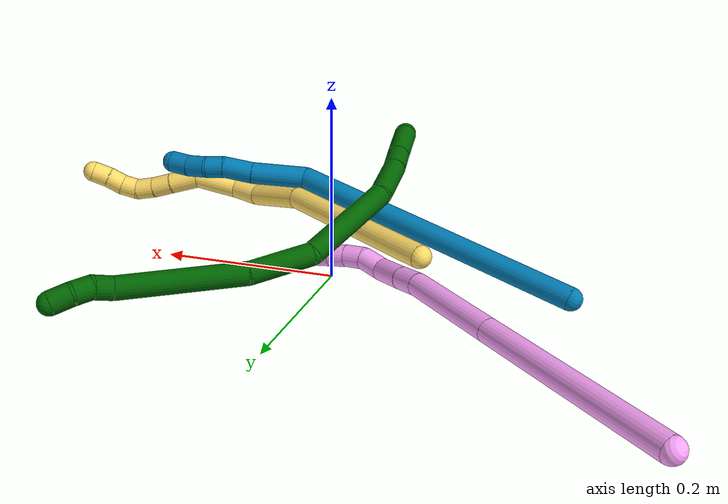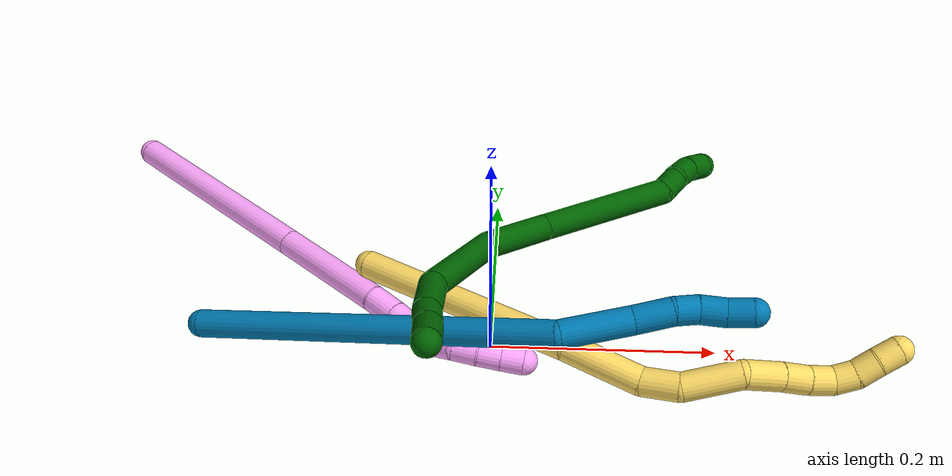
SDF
<sdf version="1.7">
 <world name="default">
  <model name="4">
   <static>0</static>
   <link name="4">
    <collision name="collision-cylinder-e_1_1_4">
     <pose>0.042945 -0.05913 -0.083503 2.52544 0.39739 1.12833</pose>
     <geometry><cylinder><radius>0.0125</radius><length>0.221932</length></cylinder></geometry>
     <surface>
      <friction><ode><mu>1.16</mu><mu2>1.16</mu2><slip1>0</slip1><slip2>0</slip2></ode></friction>
      <contact><ode><kp>1e+06</kp><kd>1</kd><max_vel>0</max_vel><min_depth>0.001</min_depth></ode></contact>
     </surface>
    </collision>
    <visual name="visual-cylinder-e_1_1_4">
     <pose>0.042945 -0.05913 -0.083503 2.52544 0.39739 1.12833</pose>
     <geometry><cylinder><radius>0.0125</radius><length>0.221932</length></cylinder></geometry>
     <material><ambient>1 0.65098 0.996078 1</ambient></material>
    </visual>
    <collision name="collision-cylinder-e_2_4_5">
     <pose>0.108557 -0.149914 -0.211364 2.52178 0.394173 1.11512</pose>
     <geometry><cylinder><radius>0.0125</radius><length>0.118039</length></cylinder></geometry>
     <surface>
      <friction><ode><mu>1.16</mu><mu2>1.16</mu2><slip1>0</slip1><slip2>0</slip2></ode></friction>
      <contact><ode><kp>1e+06</kp><kd>1</kd><max_vel>0</max_vel><min_depth>0.001</min_depth></ode></contact>
     </surface>
    </collision>
    <visual name="visual-cylinder-e_2_4_5">
     <pose>0.108557 -0.149914 -0.211364 2.52178 0.394173 1.11512</pose>
     <geometry><cylinder><radius>0.0125</radius><length>0.118039</length></cylinder></geometry>
     <material><ambient>1 0.65098 0.996078 1</ambient></material>
    </visual>
    <collision name="collision-cylinder-e_3_5_6">
     <pose>0.135828 -0.187824 -0.267403 2.64998 0.33449 1.18463</pose>
     <geometry><cylinder><radius>0.0125</radius><length>0.028057</length></cylinder></geometry>
     <surface>
      <friction><ode><mu>1.16</mu><mu2>1.16</mu2><slip1>0</slip1><slip2>0</slip2></ode></friction>
      <contact><ode><kp>1e+06</kp><kd>1</kd><max_vel>0</max_vel><min_depth>0.001</min_depth></ode></contact>
     </surface>
    </collision>
    <visual name="visual-cylinder-e_3_5_6">
     <pose>0.135828 -0.187824 -0.267403 2.64998 0.33449 1.18463</pose>
     <geometry><cylinder><radius>0.0125</radius><length>0.028057</length></cylinder></geometry>
     <material><ambient>1 0.65098 0.996078 1</ambient></material>
    </visual>
    <collision name="collision-cylinder-e_4_6_7">
     <pose>0.146152 -0.204191 -0.296279 2.60995 0.279164 0.952782</pose>
     <geometry><cylinder><radius>0.0125</radius><length>0.041501</length></cylinder></geometry>
     <surface>
      <friction><ode><mu>1.16</mu><mu2>1.16</mu2><slip1>0</slip1><slip2>0</slip2></ode></friction>
      <contact><ode><kp>1e+06</kp><kd>1</kd><max_vel>0</max_vel><min_depth>0.001</min_depth></ode></contact>
     </surface>
    </collision>
    <visual name="visual-cylinder-e_4_6_7">
     <pose>0.146152 -0.204191 -0.296279 2.60995 0.279164 0.952782</pose>
     <geometry><cylinder><radius>0.0125</radius><length>0.041501</length></cylinder></geometry>
     <material><ambient>1 0.65098 0.996078 1</ambient></material>
    </visual>
    <collision name="collision-cylinder-e_5_7_8">
     <pose>0.160955 -0.219566 -0.322465 2.61209 0.717134 1.88905</pose>
     <geometry><cylinder><radius>0.0125</radius><length>0.027647</length></cylinder></geometry>
     <surface>
      <friction><ode><mu>1.16</mu><mu2>1.16</mu2><slip1>0</slip1><slip2>0</slip2></ode></friction>
      <contact><ode><kp>1e+06</kp><kd>1</kd><max_vel>0</max_vel><min_depth>0.001</min_depth></ode></contact>
     </surface>
    </collision>
    <visual name="visual-cylinder-e_5_7_8">
     <pose>0.160955 -0.219566 -0.322465 2.61209 0.717134 1.88905</pose>
     <geometry><cylinder><radius>0.0125</radius><length>0.027647</length></cylinder></geometry>
     <material><ambient>1 0.65098 0.996078 1</ambient></material>
    </visual>
    <collision name="collision-cylinder-e_6_8_9">
     <pose>0.176619 -0.225567 -0.340408 3.05926 0.632219 2.89104</pose>
     <geometry><cylinder><radius>0.0125</radius><length>0.022267</length></cylinder></geometry>
     <surface>
      <friction><ode><mu>1.16</mu><mu2>1.16</mu2><slip1>0</slip1><slip2>0</slip2></ode></friction>
      <contact><ode><kp>1e+06</kp><kd>1</kd><max_vel>0</max_vel><min_depth>0.001</min_depth></ode></contact>
     </surface>
    </collision>
    <visual name="visual-cylinder-e_6_8_9">
     <pose>0.176619 -0.225567 -0.340408 3.05926 0.632219 2.89104</pose>
     <geometry><cylinder><radius>0.0125</radius><length>0.022267</length></cylinder></geometry>
     <material><ambient>1 0.65098 0.996078 1</ambient></material>
    </visual>
    <collision name="collision-cylinder-e_7_9_10">
     <pose>0.18907 -0.225664 -0.357742 -3.06515 0.609625 -2.8997</pose>
     <geometry><cylinder><radius>0.0125</radius><length>0.020509</length></cylinder></geometry>
     <surface>
      <friction><ode><mu>1.16</mu><mu2>1.16</mu2><slip1>0</slip1><slip2>0</slip2></ode></friction>
      <contact><ode><kp>1e+06</kp><kd>1</kd><max_vel>0</max_vel><min_depth>0.001</min_depth></ode></contact>
     </surface>
    </collision>
    <visual name="visual-cylinder-e_7_9_10">
     <pose>0.18907 -0.225664 -0.357742 -3.06515 0.609625 -2.8997</pose>
     <geometry><cylinder><radius>0.0125</radius><length>0.020509</length></cylinder></geometry>
     <material><ambient>1 0.65098 0.996078 1</ambient></material>
    </visual>
    <collision name="collision-cylinder-e_8_10_2">
     <pose>0.200862 -0.224429 -0.374191 -3.06823 0.631921 -2.91803</pose>
     <geometry><cylinder><radius>0.0125</radius><length>0.020047</length></cylinder></geometry>
     <surface>
      <friction><ode><mu>1.16</mu><mu2>1.16</mu2><slip1>0</slip1><slip2>0</slip2></ode></friction>
      <contact><ode><kp>1e+06</kp><kd>1</kd><max_vel>0</max_vel><min_depth>0.001</min_depth></ode></contact>
     </surface>
    </collision>
    <visual name="visual-cylinder-e_8_10_2">
     <pose>0.200862 -0.224429 -0.374191 -3.06823 0.631921 -2.91803</pose>
     <geometry><cylinder><radius>0.0125</radius><length>0.020047</length></cylinder></geometry>
     <material><ambient>1 0.65098 0.996078 1</ambient></material>
    </visual>
    <collision name="collision-sphere-2">
     <pose>0.206783 -0.223836 -0.382257 0 -0 0</pose>
     <geometry><sphere><radius>0.0125</radius></sphere></geometry>
     <surface>
      <friction><ode><mu>1.16</mu><mu2>1.16</mu2><slip1>0</slip1><slip2>0</slip2></ode></friction>
      <contact><ode><kp>1e+06</kp><kd>1</kd><max_vel>0</max_vel><min_depth>0.001</min_depth></ode></contact>
     </surface>
    </collision>
    <visual name="visual-sphere-2">
     <pose>0.206783 -0.223836 -0.382257 0 -0 0</pose>
     <geometry><sphere><radius>0.0125</radius></sphere></geometry>
     <material><ambient>1 0.65098 0.996078 1</ambient></material>
    </visual>
    <collision name="collision-sphere-10">
     <pose>0.194941 -0.225022 -0.366124 0 -0 0</pose>
     <geometry><sphere><radius>0.0125</radius></sphere></geometry>
     <surface>
      <friction><ode><mu>1.16</mu><mu2>1.16</mu2><slip1>0</slip1><slip2>0</slip2></ode></friction>
      <contact><ode><kp>1e+06</kp><kd>1</kd><max_vel>0</max_vel><min_depth>0.001</min_depth></ode></contact>
     </surface>
    </collision>
    <visual name="visual-sphere-10">
     <pose>0.194941 -0.225022 -0.366124 0 -0 0</pose>
     <geometry><sphere><radius>0.0125</radius></sphere></geometry>
     <material><ambient>1 0.65098 0.996078 1</ambient></material>
    </visual>
    <collision name="collision-sphere-9">
     <pose>0.183198 -0.226306 -0.349359 0 -0 0</pose>
     <geometry><sphere><radius>0.0125</radius></sphere></geometry>
     <surface>
      <friction><ode><mu>1.16</mu><mu2>1.16</mu2><slip1>0</slip1><slip2>0</slip2></ode></friction>
      <contact><ode><kp>1e+06</kp><kd>1</kd><max_vel>0</max_vel><min_depth>0.001</min_depth></ode></contact>
     </surface>
    </collision>
    <visual name="visual-sphere-9">
     <pose>0.183198 -0.226306 -0.349359 0 -0 0</pose>
     <geometry><sphere><radius>0.0125</radius></sphere></geometry>
     <material><ambient>1 0.65098 0.996078 1</ambient></material>
    </visual>
    <collision name="collision-sphere-4">
     <pose>0.085891 -0.11826 -0.167007 0 -0 0</pose>
     <geometry><sphere><radius>0.0125</radius></sphere></geometry>
     <surface>
      <friction><ode><mu>1.16</mu><mu2>1.16</mu2><slip1>0</slip1><slip2>0</slip2></ode></friction>
      <contact><ode><kp>1e+06</kp><kd>1</kd><max_vel>0</max_vel><min_depth>0.001</min_depth></ode></contact>
     </surface>
    </collision>
    <visual name="visual-sphere-4">
     <pose>0.085891 -0.11826 -0.167007 0 -0 0</pose>
     <geometry><sphere><radius>0.0125</radius></sphere></geometry>
     <material><ambient>1 0.65098 0.996078 1</ambient></material>
    </visual>
    <collision name="collision-sphere-1">
     <geometry><sphere><radius>0.0125</radius></sphere></geometry>
     <surface>
      <friction><ode><mu>1.16</mu><mu2>1.16</mu2><slip1>0</slip1><slip2>0</slip2></ode></friction>
      <contact><ode><kp>1e+06</kp><kd>1</kd><max_vel>0</max_vel><min_depth>0.001</min_depth></ode></contact>
     </surface>
    </collision>
    <visual name="visual-sphere-1">
     <geometry><sphere><radius>0.0125</radius></sphere></geometry>
     <material><ambient>1 0.65098 0.996078 1</ambient></material>
    </visual>
    <collision name="collision-sphere-8">
     <pose>0.17004 -0.224828 -0.331457 0 -0 0</pose>
     <geometry><sphere><radius>0.0125</radius></sphere></geometry>
     <surface>
      <friction><ode><mu>1.16</mu><mu2>1.16</mu2><slip1>0</slip1><slip2>0</slip2></ode></friction>
      <contact><ode><kp>1e+06</kp><kd>1</kd><max_vel>0</max_vel><min_depth>0.001</min_depth></ode></contact>
     </surface>
    </collision>
    <visual name="visual-sphere-8">
     <pose>0.17004 -0.224828 -0.331457 0 -0 0</pose>
     <geometry><sphere><radius>0.0125</radius></sphere></geometry>
     <material><ambient>1 0.65098 0.996078 1</ambient></material>
    </visual>
    <collision name="collision-sphere-5">
     <pose>0.131223 -0.181569 -0.255721 0 -0 0</pose>
     <geometry><sphere><radius>0.0125</radius></sphere></geometry>
     <surface>
      <friction><ode><mu>1.16</mu><mu2>1.16</mu2><slip1>0</slip1><slip2>0</slip2></ode></friction>
      <contact><ode><kp>1e+06</kp><kd>1</kd><max_vel>0</max_vel><min_depth>0.001</min_depth></ode></contact>
     </surface>
    </collision>
    <visual name="visual-sphere-5">
     <pose>0.131223 -0.181569 -0.255721 0 -0 0</pose>
     <geometry><sphere><radius>0.0125</radius></sphere></geometry>
     <material><ambient>1 0.65098 0.996078 1</ambient></material>
    </visual>
    <collision name="collision-sphere-6">
     <pose>0.140434 -0.194079 -0.279085 0 -0 0</pose>
     <geometry><sphere><radius>0.0125</radius></sphere></geometry>
     <surface>
      <friction><ode><mu>1.16</mu><mu2>1.16</mu2><slip1>0</slip1><slip2>0</slip2></ode></friction>
      <contact><ode><kp>1e+06</kp><kd>1</kd><max_vel>0</max_vel><min_depth>0.001</min_depth></ode></contact>
     </surface>
    </collision>
    <visual name="visual-sphere-6">
     <pose>0.140434 -0.194079 -0.279085 0 -0 0</pose>
     <geometry><sphere><radius>0.0125</radius></sphere></geometry>
     <material><ambient>1 0.65098 0.996078 1</ambient></material>
    </visual>
    <collision name="collision-sphere-7">
     <pose>0.15187 -0.214303 -0.313473 0 -0 0</pose>
     <geometry><sphere><radius>0.0125</radius></sphere></geometry>
     <surface>
      <friction><ode><mu>1.16</mu><mu2>1.16</mu2><slip1>0</slip1><slip2>0</slip2></ode></friction>
      <contact><ode><kp>1e+06</kp><kd>1</kd><max_vel>0</max_vel><min_depth>0.001</min_depth></ode></contact>
     </surface>
    </collision>
    <visual name="visual-sphere-7">
     <pose>0.15187 -0.214303 -0.313473 0 -0 0</pose>
     <geometry><sphere><radius>0.0125</radius></sphere></geometry>
     <material><ambient>1 0.65098 0.996078 1</ambient></material>
    </visual>
    <inertial>
     <pose>0.097017 -0.129566 -0.189227 0 -0 0</pose>
     <mass>0.5</mass>
     <inertia>
      <ixx>0.001332</ixx>
      <ixy>0</ixy>
      <ixz>0</ixz>
      <iyy>0.000722</iyy>
      <iyz>0</iyz>
      <izz>0.000124</izz>
     </inertia>
    </inertial>
   </link>
   <pose>-0.361755 0.263542 0.012529 -0.594841 -0.742172 0.316001</pose>
  </model>
  <model name="5">
   <static>0</static>
   <link name="5">
    <collision name="collision-cylinder-e_1_1_4">
     <pose>0.033541 -0.003628 0.097668 0.037128 0.330585 0.006194</pose>
     <geometry><cylinder><radius>0.0125</radius><length>0.20666</length></cylinder></geometry>
     <surface>
      <friction><ode><mu>1.16</mu><mu2>1.16</mu2><slip1>0</slip1><slip2>0</slip2></ode></friction>
      <contact><ode><kp>1e+06</kp><kd>1</kd><max_vel>0</max_vel><min_depth>0.001</min_depth></ode></contact>
     </surface>
    </collision>
    <visual name="visual-cylinder-e_1_1_4">
     <pose>0.033541 -0.003628 0.097668 0.037128 0.330585 0.006194</pose>
     <geometry><cylinder><radius>0.0125</radius><length>0.20666</length></cylinder></geometry>
     <material><ambient>1 0.858824 0.4 1</ambient></material>
    </visual>
    <collision name="collision-cylinder-e_2_4_5">
     <pose>0.086041 -0.007742 0.224057 0.016918 0.583382 0.00508</pose>
     <geometry><cylinder><radius>0.0125</radius><length>0.068838</length></cylinder></geometry>
     <surface>
      <friction><ode><mu>1.16</mu><mu2>1.16</mu2><slip1>0</slip1><slip2>0</slip2></ode></friction>
      <contact><ode><kp>1e+06</kp><kd>1</kd><max_vel>0</max_vel><min_depth>0.001</min_depth></ode></contact>
     </surface>
    </collision>
    <visual name="visual-cylinder-e_2_4_5">
     <pose>0.086041 -0.007742 0.224057 0.016918 0.583382 0.00508</pose>
     <geometry><cylinder><radius>0.0125</radius><length>0.068838</length></cylinder></geometry>
     <material><ambient>1 0.858824 0.4 1</ambient></material>
    </visual>
    <collision name="collision-cylinder-e_3_5_6">
     <pose>0.111753 -0.004333 0.267117 -0.265209 0.426597 -0.057765</pose>
     <geometry><cylinder><radius>0.0125</radius><length>0.03264</length></cylinder></geometry>
     <surface>
      <friction><ode><mu>1.16</mu><mu2>1.16</mu2><slip1>0</slip1><slip2>0</slip2></ode></friction>
      <contact><ode><kp>1e+06</kp><kd>1</kd><max_vel>0</max_vel><min_depth>0.001</min_depth></ode></contact>
     </surface>
    </collision>
    <visual name="visual-cylinder-e_3_5_6">
     <pose>0.111753 -0.004333 0.267117 -0.265209 0.426597 -0.057765</pose>
     <geometry><cylinder><radius>0.0125</radius><length>0.03264</length></cylinder></geometry>
     <material><ambient>1 0.858824 0.4 1</ambient></material>
    </visual>
    <collision name="collision-cylinder-e_4_6_7">
     <pose>0.129126 0.014701 0.299056 -0.710346 0.429009 -0.161256</pose>
     <geometry><cylinder><radius>0.0125</radius><length>0.051061</length></cylinder></geometry>
     <surface>
      <friction><ode><mu>1.16</mu><mu2>1.16</mu2><slip1>0</slip1><slip2>0</slip2></ode></friction>
      <contact><ode><kp>1e+06</kp><kd>1</kd><max_vel>0</max_vel><min_depth>0.001</min_depth></ode></contact>
     </surface>
    </collision>
    <visual name="visual-cylinder-e_4_6_7">
     <pose>0.129126 0.014701 0.299056 -0.710346 0.429009 -0.161256</pose>
     <geometry><cylinder><radius>0.0125</radius><length>0.051061</length></cylinder></geometry>
     <material><ambient>1 0.858824 0.4 1</ambient></material>
    </visual>
    <collision name="collision-cylinder-e_5_7_8">
     <pose>0.153285 0.037152 0.32436 -0.75937 0.905667 -0.383545</pose>
     <geometry><cylinder><radius>0.0125</radius><length>0.034415</length></cylinder></geometry>
     <surface>
      <friction><ode><mu>1.16</mu><mu2>1.16</mu2><slip1>0</slip1><slip2>0</slip2></ode></friction>
      <contact><ode><kp>1e+06</kp><kd>1</kd><max_vel>0</max_vel><min_depth>0.001</min_depth></ode></contact>
     </surface>
    </collision>
    <visual name="visual-cylinder-e_5_7_8">
     <pose>0.153285 0.037152 0.32436 -0.75937 0.905667 -0.383545</pose>
     <geometry><cylinder><radius>0.0125</radius><length>0.034415</length></cylinder></geometry>
     <material><ambient>1 0.858824 0.4 1</ambient></material>
    </visual>
    <collision name="collision-cylinder-e_6_8_9">
     <pose>0.176363 0.048803 0.338027 -0.629035 0.912529 -0.31666</pose>
     <geometry><cylinder><radius>0.0125</radius><length>0.024114</length></cylinder></geometry>
     <surface>
      <friction><ode><mu>1.16</mu><mu2>1.16</mu2><slip1>0</slip1><slip2>0</slip2></ode></friction>
      <contact><ode><kp>1e+06</kp><kd>1</kd><max_vel>0</max_vel><min_depth>0.001</min_depth></ode></contact>
     </surface>
    </collision>
    <visual name="visual-cylinder-e_6_8_9">
     <pose>0.176363 0.048803 0.338027 -0.629035 0.912529 -0.31666</pose>
     <geometry><cylinder><radius>0.0125</radius><length>0.024114</length></cylinder></geometry>
     <material><ambient>1 0.858824 0.4 1</ambient></material>
    </visual>
    <collision name="collision-cylinder-e_7_9_10">
     <pose>0.193925 0.058132 0.34987 -0.703772 0.805277 -0.310245</pose>
     <geometry><cylinder><radius>0.0125</radius><length>0.022258</length></cylinder></geometry>
     <surface>
      <friction><ode><mu>1.16</mu><mu2>1.16</mu2><slip1>0</slip1><slip2>0</slip2></ode></friction>
      <contact><ode><kp>1e+06</kp><kd>1</kd><max_vel>0</max_vel><min_depth>0.001</min_depth></ode></contact>
     </surface>
    </collision>
    <visual name="visual-cylinder-e_7_9_10">
     <pose>0.193925 0.058132 0.34987 -0.703772 0.805277 -0.310245</pose>
     <geometry><cylinder><radius>0.0125</radius><length>0.022258</length></cylinder></geometry>
     <material><ambient>1 0.858824 0.4 1</ambient></material>
    </visual>
    <collision name="collision-cylinder-e_8_10_11">
     <pose>0.205831 0.069408 0.36249 -0.750494 0.398665 -0.158818</pose>
     <geometry><cylinder><radius>0.0125</radius><length>0.020003</length></cylinder></geometry>
     <surface>
      <friction><ode><mu>1.16</mu><mu2>1.16</mu2><slip1>0</slip1><slip2>0</slip2></ode></friction>
      <contact><ode><kp>1e+06</kp><kd>1</kd><max_vel>0</max_vel><min_depth>0.001</min_depth></ode></contact>
     </surface>
    </collision>
    <visual name="visual-cylinder-e_8_10_11">
     <pose>0.205831 0.069408 0.36249 -0.750494 0.398665 -0.158818</pose>
     <geometry><cylinder><radius>0.0125</radius><length>0.020003</length></cylinder></geometry>
     <material><ambient>1 0.858824 0.4 1</ambient></material>
    </visual>
    <collision name="collision-cylinder-e_9_11_12">
     <pose>0.21109 0.083555 0.375263 -0.916265 0.138022 -0.068144</pose>
     <geometry><cylinder><radius>0.0125</radius><length>0.020006</length></cylinder></geometry>
     <surface>
      <friction><ode><mu>1.16</mu><mu2>1.16</mu2><slip1>0</slip1><slip2>0</slip2></ode></friction>
      <contact><ode><kp>1e+06</kp><kd>1</kd><max_vel>0</max_vel><min_depth>0.001</min_depth></ode></contact>
     </surface>
    </collision>
    <visual name="visual-cylinder-e_9_11_12">
     <pose>0.21109 0.083555 0.375263 -0.916265 0.138022 -0.068144</pose>
     <geometry><cylinder><radius>0.0125</radius><length>0.020006</length></cylinder></geometry>
     <material><ambient>1 0.858824 0.4 1</ambient></material>
    </visual>
    <collision name="collision-cylinder-e_10_12_2">
     <pose>0.215085 0.099343 0.386803 -0.963498 0.264932 -0.139107</pose>
     <geometry><cylinder><radius>0.0125</radius><length>0.020006</length></cylinder></geometry>
     <surface>
      <friction><ode><mu>1.16</mu><mu2>1.16</mu2><slip1>0</slip1><slip2>0</slip2></ode></friction>
      <contact><ode><kp>1e+06</kp><kd>1</kd><max_vel>0</max_vel><min_depth>0.001</min_depth></ode></contact>
     </surface>
    </collision>
    <visual name="visual-cylinder-e_10_12_2">
     <pose>0.215085 0.099343 0.386803 -0.963498 0.264932 -0.139107</pose>
     <geometry><cylinder><radius>0.0125</radius><length>0.020006</length></cylinder></geometry>
     <material><ambient>1 0.858824 0.4 1</ambient></material>
    </visual>
    <collision name="collision-sphere-2">
     <pose>0.217704 0.10727 0.392312 0 -0 0</pose>
     <geometry><sphere><radius>0.0125</radius></sphere></geometry>
     <surface>
      <friction><ode><mu>1.16</mu><mu2>1.16</mu2><slip1>0</slip1><slip2>0</slip2></ode></friction>
      <contact><ode><kp>1e+06</kp><kd>1</kd><max_vel>0</max_vel><min_depth>0.001</min_depth></ode></contact>
     </surface>
    </collision>
    <visual name="visual-sphere-2">
     <pose>0.217704 0.10727 0.392312 0 -0 0</pose>
     <geometry><sphere><radius>0.0125</radius></sphere></geometry>
     <material><ambient>1 0.858824 0.4 1</ambient></material>
    </visual>
    <collision name="collision-sphere-12">
     <pose>0.212466 0.091415 0.381295 0 -0 0</pose>
     <geometry><sphere><radius>0.0125</radius></sphere></geometry>
     <surface>
      <friction><ode><mu>1.16</mu><mu2>1.16</mu2><slip1>0</slip1><slip2>0</slip2></ode></friction>
      <contact><ode><kp>1e+06</kp><kd>1</kd><max_vel>0</max_vel><min_depth>0.001</min_depth></ode></contact>
     </surface>
    </collision>
    <visual name="visual-sphere-12">
     <pose>0.212466 0.091415 0.381295 0 -0 0</pose>
     <geometry><sphere><radius>0.0125</radius></sphere></geometry>
     <material><ambient>1 0.858824 0.4 1</ambient></material>
    </visual>
    <collision name="collision-sphere-11">
     <pose>0.209714 0.075694 0.369231 0 -0 0</pose>
     <geometry><sphere><radius>0.0125</radius></sphere></geometry>
     <surface>
      <friction><ode><mu>1.16</mu><mu2>1.16</mu2><slip1>0</slip1><slip2>0</slip2></ode></friction>
      <contact><ode><kp>1e+06</kp><kd>1</kd><max_vel>0</max_vel><min_depth>0.001</min_depth></ode></contact>
     </surface>
    </collision>
    <visual name="visual-sphere-11">
     <pose>0.209714 0.075694 0.369231 0 -0 0</pose>
     <geometry><sphere><radius>0.0125</radius></sphere></geometry>
     <material><ambient>1 0.858824 0.4 1</ambient></material>
    </visual>
    <collision name="collision-sphere-10">
     <pose>0.201949 0.063122 0.355749 0 -0 0</pose>
     <geometry><sphere><radius>0.0125</radius></sphere></geometry>
     <surface>
      <friction><ode><mu>1.16</mu><mu2>1.16</mu2><slip1>0</slip1><slip2>0</slip2></ode></friction>
      <contact><ode><kp>1e+06</kp><kd>1</kd><max_vel>0</max_vel><min_depth>0.001</min_depth></ode></contact>
     </surface>
    </collision>
    <visual name="visual-sphere-10">
     <pose>0.201949 0.063122 0.355749 0 -0 0</pose>
     <geometry><sphere><radius>0.0125</radius></sphere></geometry>
     <material><ambient>1 0.858824 0.4 1</ambient></material>
    </visual>
    <collision name="collision-sphere-9">
     <pose>0.1859 0.053142 0.343991 0 -0 0</pose>
     <geometry><sphere><radius>0.0125</radius></sphere></geometry>
     <surface>
      <friction><ode><mu>1.16</mu><mu2>1.16</mu2><slip1>0</slip1><slip2>0</slip2></ode></friction>
      <contact><ode><kp>1e+06</kp><kd>1</kd><max_vel>0</max_vel><min_depth>0.001</min_depth></ode></contact>
     </surface>
    </collision>
    <visual name="visual-sphere-9">
     <pose>0.1859 0.053142 0.343991 0 -0 0</pose>
     <geometry><sphere><radius>0.0125</radius></sphere></geometry>
     <material><ambient>1 0.858824 0.4 1</ambient></material>
    </visual>
    <collision name="collision-sphere-4">
     <pose>0.067081 -0.007256 0.195335 0 -0 0</pose>
     <geometry><sphere><radius>0.0125</radius></sphere></geometry>
     <surface>
      <friction><ode><mu>1.16</mu><mu2>1.16</mu2><slip1>0</slip1><slip2>0</slip2></ode></friction>
      <contact><ode><kp>1e+06</kp><kd>1</kd><max_vel>0</max_vel><min_depth>0.001</min_depth></ode></contact>
     </surface>
    </collision>
    <visual name="visual-sphere-4">
     <pose>0.067081 -0.007256 0.195335 0 -0 0</pose>
     <geometry><sphere><radius>0.0125</radius></sphere></geometry>
     <material><ambient>1 0.858824 0.4 1</ambient></material>
    </visual>
    <collision name="collision-sphere-1">
     <geometry><sphere><radius>0.0125</radius></sphere></geometry>
     <surface>
      <friction><ode><mu>1.16</mu><mu2>1.16</mu2><slip1>0</slip1><slip2>0</slip2></ode></friction>
      <contact><ode><kp>1e+06</kp><kd>1</kd><max_vel>0</max_vel><min_depth>0.001</min_depth></ode></contact>
     </surface>
    </collision>
    <visual name="visual-sphere-1">
     <geometry><sphere><radius>0.0125</radius></sphere></geometry>
     <material><ambient>1 0.858824 0.4 1</ambient></material>
    </visual>
    <collision name="collision-sphere-8">
     <pose>0.166825 0.044463 0.332063 0 -0 0</pose>
     <geometry><sphere><radius>0.0125</radius></sphere></geometry>
     <surface>
      <friction><ode><mu>1.16</mu><mu2>1.16</mu2><slip1>0</slip1><slip2>0</slip2></ode></friction>
      <contact><ode><kp>1e+06</kp><kd>1</kd><max_vel>0</max_vel><min_depth>0.001</min_depth></ode></contact>
     </surface>
    </collision>
    <visual name="visual-sphere-8">
     <pose>0.166825 0.044463 0.332063 0 -0 0</pose>
     <geometry><sphere><radius>0.0125</radius></sphere></geometry>
     <material><ambient>1 0.858824 0.4 1</ambient></material>
    </visual>
    <collision name="collision-sphere-5">
     <pose>0.105 -0.008228 0.252779 0 -0 0</pose>
     <geometry><sphere><radius>0.0125</radius></sphere></geometry>
     <surface>
      <friction><ode><mu>1.16</mu><mu2>1.16</mu2><slip1>0</slip1><slip2>0</slip2></ode></friction>
      <contact><ode><kp>1e+06</kp><kd>1</kd><max_vel>0</max_vel><min_depth>0.001</min_depth></ode></contact>
     </surface>
    </collision>
    <visual name="visual-sphere-5">
     <pose>0.105 -0.008228 0.252779 0 -0 0</pose>
     <geometry><sphere><radius>0.0125</radius></sphere></geometry>
     <material><ambient>1 0.858824 0.4 1</ambient></material>
    </visual>
    <collision name="collision-sphere-6">
     <pose>0.118506 -0.000439 0.281455 0 -0 0</pose>
     <geometry><sphere><radius>0.0125</radius></sphere></geometry>
     <surface>
      <friction><ode><mu>1.16</mu><mu2>1.16</mu2><slip1>0</slip1><slip2>0</slip2></ode></friction>
      <contact><ode><kp>1e+06</kp><kd>1</kd><max_vel>0</max_vel><min_depth>0.001</min_depth></ode></contact>
     </surface>
    </collision>
    <visual name="visual-sphere-6">
     <pose>0.118506 -0.000439 0.281455 0 -0 0</pose>
     <geometry><sphere><radius>0.0125</radius></sphere></geometry>
     <material><ambient>1 0.858824 0.4 1</ambient></material>
    </visual>
    <collision name="collision-sphere-7">
     <pose>0.139746 0.02984 0.316658 0 -0 0</pose>
     <geometry><sphere><radius>0.0125</radius></sphere></geometry>
     <surface>
      <friction><ode><mu>1.16</mu><mu2>1.16</mu2><slip1>0</slip1><slip2>0</slip2></ode></friction>
      <contact><ode><kp>1e+06</kp><kd>1</kd><max_vel>0</max_vel><min_depth>0.001</min_depth></ode></contact>
     </surface>
    </collision>
    <visual name="visual-sphere-7">
     <pose>0.139746 0.02984 0.316658 0 -0 0</pose>
     <geometry><sphere><radius>0.0125</radius></sphere></geometry>
     <material><ambient>1 0.858824 0.4 1</ambient></material>
    </visual>
    <inertial>
     <pose>0.099166 0.016246 0.218389 0 -0 0</pose>
     <mass>0.5</mass>
     <inertia>
      <ixx>0.00077</ixx>
      <ixy>0</ixy>
      <ixz>0</ixz>
      <iyy>0.000806</iyy>
      <iyz>0</iyz>
      <izz>-0.000231</izz>
     </inertia>
    </inertial>
   </link>
   <pose>-0.110654 0.04493 0.054193 0.968097 0.916741 0.367869</pose>
  </model>
  <model name="6">
   <static>0</static>
   <link name="6">
    <collision name="collision-cylinder-e_1_1_4">
     <pose>0.000845 0.000148 -0.019573 -3.13402 0.04313 -2.79396</pose>
     <geometry><cylinder><radius>0.0125</radius><length>0.039184</length></cylinder></geometry>
     <surface>
      <friction><ode><mu>1.16</mu><mu2>1.16</mu2><slip1>0</slip1><slip2>0</slip2></ode></friction>
      <contact><ode><kp>1e+06</kp><kd>1</kd><max_vel>0</max_vel><min_depth>0.001</min_depth></ode></contact>
     </surface>
    </collision>
    <visual name="visual-cylinder-e_1_1_4">
     <pose>0.000845 0.000148 -0.019573 -3.13402 0.04313 -2.79396</pose>
     <geometry><cylinder><radius>0.0125</radius><length>0.039184</length></cylinder></geometry>
     <material><ambient>0 0.392157 0.003922 1</ambient></material>
    </visual>
    <collision name="collision-cylinder-e_2_4_5">
     <pose>0.001002 0.001066 -0.052715 -3.08497 -0.05053 1.45712</pose>
     <geometry><cylinder><radius>0.0125</radius><length>0.027214</length></cylinder></geometry>
     <surface>
      <friction><ode><mu>1.16</mu><mu2>1.16</mu2><slip1>0</slip1><slip2>0</slip2></ode></friction>
      <contact><ode><kp>1e+06</kp><kd>1</kd><max_vel>0</max_vel><min_depth>0.001</min_depth></ode></contact>
     </surface>
    </collision>
    <visual name="visual-cylinder-e_2_4_5">
     <pose>0.001002 0.001066 -0.052715 -3.08497 -0.05053 1.45712</pose>
     <geometry><cylinder><radius>0.0125</radius><length>0.027214</length></cylinder></geometry>
     <material><ambient>0 0.392157 0.003922 1</ambient></material>
    </visual>
    <collision name="collision-cylinder-e_3_5_6">
     <pose>0.001492 0.005209 -0.092605 -3.01408 0.044318 -0.668261</pose>
     <geometry><cylinder><radius>0.0125</radius><length>0.053128</length></cylinder></geometry>
     <surface>
      <friction><ode><mu>1.16</mu><mu2>1.16</mu2><slip1>0</slip1><slip2>0</slip2></ode></friction>
      <contact><ode><kp>1e+06</kp><kd>1</kd><max_vel>0</max_vel><min_depth>0.001</min_depth></ode></contact>
     </surface>
    </collision>
    <visual name="visual-cylinder-e_3_5_6">
     <pose>0.001492 0.005209 -0.092605 -3.01408 0.044318 -0.668261</pose>
     <geometry><cylinder><radius>0.0125</radius><length>0.053128</length></cylinder></geometry>
     <material><ambient>0 0.392157 0.003922 1</ambient></material>
    </visual>
    <collision name="collision-cylinder-e_4_6_7">
     <pose>0.023573 0.023811 -0.170103 -2.85239 0.373184 -1.82757</pose>
     <geometry><cylinder><radius>0.0125</radius><length>0.114678</length></cylinder></geometry>
     <surface>
      <friction><ode><mu>1.16</mu><mu2>1.16</mu2><slip1>0</slip1><slip2>0</slip2></ode></friction>
      <contact><ode><kp>1e+06</kp><kd>1</kd><max_vel>0</max_vel><min_depth>0.001</min_depth></ode></contact>
     </surface>
    </collision>
    <visual name="visual-cylinder-e_4_6_7">
     <pose>0.023573 0.023811 -0.170103 -2.85239 0.373184 -1.82757</pose>
     <geometry><cylinder><radius>0.0125</radius><length>0.114678</length></cylinder></geometry>
     <material><ambient>0 0.392157 0.003922 1</ambient></material>
    </visual>
    <collision name="collision-cylinder-e_5_7_8">
     <pose>0.066367 0.056133 -0.240838 -2.42336 0.700182 -1.54308</pose>
     <geometry><cylinder><radius>0.0125</radius><length>0.067942</length></cylinder></geometry>
     <surface>
      <friction><ode><mu>1.16</mu><mu2>1.16</mu2><slip1>0</slip1><slip2>0</slip2></ode></friction>
      <contact><ode><kp>1e+06</kp><kd>1</kd><max_vel>0</max_vel><min_depth>0.001</min_depth></ode></contact>
     </surface>
    </collision>
    <visual name="visual-cylinder-e_5_7_8">
     <pose>0.066367 0.056133 -0.240838 -2.42336 0.700182 -1.54308</pose>
     <geometry><cylinder><radius>0.0125</radius><length>0.067942</length></cylinder></geometry>
     <material><ambient>0 0.392157 0.003922 1</ambient></material>
    </visual>
    <collision name="collision-cylinder-e_6_8_9">
     <pose>0.13358 0.114447 -0.28731 -2.14918 0.74415 -1.24915</pose>
     <geometry><cylinder><radius>0.0125</radius><length>0.133827</length></cylinder></geometry>
     <surface>
      <friction><ode><mu>1.16</mu><mu2>1.16</mu2><slip1>0</slip1><slip2>0</slip2></ode></friction>
      <contact><ode><kp>1e+06</kp><kd>1</kd><max_vel>0</max_vel><min_depth>0.001</min_depth></ode></contact>
     </surface>
    </collision>
    <visual name="visual-cylinder-e_6_8_9">
     <pose>0.13358 0.114447 -0.28731 -2.14918 0.74415 -1.24915</pose>
     <geometry><cylinder><radius>0.0125</radius><length>0.133827</length></cylinder></geometry>
     <material><ambient>0 0.392157 0.003922 1</ambient></material>
    </visual>
    <collision name="collision-cylinder-e_7_9_10">
     <pose>0.181947 0.164258 -0.319896 -2.15457 0.287322 -0.525422</pose>
     <geometry><cylinder><radius>0.0125</radius><length>0.021474</length></cylinder></geometry>
     <surface>
      <friction><ode><mu>1.16</mu><mu2>1.16</mu2><slip1>0</slip1><slip2>0</slip2></ode></friction>
      <contact><ode><kp>1e+06</kp><kd>1</kd><max_vel>0</max_vel><min_depth>0.001</min_depth></ode></contact>
     </surface>
    </collision>
    <visual name="visual-cylinder-e_7_9_10">
     <pose>0.181947 0.164258 -0.319896 -2.15457 0.287322 -0.525422</pose>
     <geometry><cylinder><radius>0.0125</radius><length>0.021474</length></cylinder></geometry>
     <material><ambient>0 0.392157 0.003922 1</ambient></material>
    </visual>
    <collision name="collision-cylinder-e_8_10_11">
     <pose>0.189272 0.178303 -0.332943 -2.50468 0.43693 -1.18532</pose>
     <geometry><cylinder><radius>0.0125</radius><length>0.02024</length></cylinder></geometry>
     <surface>
      <friction><ode><mu>1.16</mu><mu2>1.16</mu2><slip1>0</slip1><slip2>0</slip2></ode></friction>
      <contact><ode><kp>1e+06</kp><kd>1</kd><max_vel>0</max_vel><min_depth>0.001</min_depth></ode></contact>
     </surface>
    </collision>
    <visual name="visual-cylinder-e_8_10_11">
     <pose>0.189272 0.178303 -0.332943 -2.50468 0.43693 -1.18532</pose>
     <geometry><cylinder><radius>0.0125</radius><length>0.02024</length></cylinder></geometry>
     <material><ambient>0 0.392157 0.003922 1</ambient></material>
    </visual>
    <collision name="collision-cylinder-e_9_11_2">
     <pose>0.200871 0.188328 -0.347388 -2.56772 0.715242 -1.80482</pose>
     <geometry><cylinder><radius>0.0125</radius><length>0.022313</length></cylinder></geometry>
     <surface>
      <friction><ode><mu>1.16</mu><mu2>1.16</mu2><slip1>0</slip1><slip2>0</slip2></ode></friction>
      <contact><ode><kp>1e+06</kp><kd>1</kd><max_vel>0</max_vel><min_depth>0.001</min_depth></ode></contact>
     </surface>
    </collision>
    <visual name="visual-cylinder-e_9_11_2">
     <pose>0.200871 0.188328 -0.347388 -2.56772 0.715242 -1.80482</pose>
     <geometry><cylinder><radius>0.0125</radius><length>0.022313</length></cylinder></geometry>
     <material><ambient>0 0.392157 0.003922 1</ambient></material>
    </visual>
    <collision name="collision-sphere-2">
     <pose>0.208187 0.192901 -0.354461 0 -0 0</pose>
     <geometry><sphere><radius>0.0125</radius></sphere></geometry>
     <surface>
      <friction><ode><mu>1.16</mu><mu2>1.16</mu2><slip1>0</slip1><slip2>0</slip2></ode></friction>
      <contact><ode><kp>1e+06</kp><kd>1</kd><max_vel>0</max_vel><min_depth>0.001</min_depth></ode></contact>
     </surface>
    </collision>
    <visual name="visual-sphere-2">
     <pose>0.208187 0.192901 -0.354461 0 -0 0</pose>
     <geometry><sphere><radius>0.0125</radius></sphere></geometry>
     <material><ambient>0 0.392157 0.003922 1</ambient></material>
    </visual>
    <collision name="collision-sphere-11">
     <pose>0.193554 0.183756 -0.340314 0 -0 0</pose>
     <geometry><sphere><radius>0.0125</radius></sphere></geometry>
     <surface>
      <friction><ode><mu>1.16</mu><mu2>1.16</mu2><slip1>0</slip1><slip2>0</slip2></ode></friction>
      <contact><ode><kp>1e+06</kp><kd>1</kd><max_vel>0</max_vel><min_depth>0.001</min_depth></ode></contact>
     </surface>
    </collision>
    <visual name="visual-sphere-11">
     <pose>0.193554 0.183756 -0.340314 0 -0 0</pose>
     <geometry><sphere><radius>0.0125</radius></sphere></geometry>
     <material><ambient>0 0.392157 0.003922 1</ambient></material>
    </visual>
    <collision name="collision-sphere-10">
     <pose>0.18499 0.172849 -0.325571 0 -0 0</pose>
     <geometry><sphere><radius>0.0125</radius></sphere></geometry>
     <surface>
      <friction><ode><mu>1.16</mu><mu2>1.16</mu2><slip1>0</slip1><slip2>0</slip2></ode></friction>
      <contact><ode><kp>1e+06</kp><kd>1</kd><max_vel>0</max_vel><min_depth>0.001</min_depth></ode></contact>
     </surface>
    </collision>
    <visual name="visual-sphere-10">
     <pose>0.18499 0.172849 -0.325571 0 -0 0</pose>
     <geometry><sphere><radius>0.0125</radius></sphere></geometry>
     <material><ambient>0 0.392157 0.003922 1</ambient></material>
    </visual>
    <collision name="collision-sphere-9">
     <pose>0.178904 0.155666 -0.31422 0 -0 0</pose>
     <geometry><sphere><radius>0.0125</radius></sphere></geometry>
     <surface>
      <friction><ode><mu>1.16</mu><mu2>1.16</mu2><slip1>0</slip1><slip2>0</slip2></ode></friction>
      <contact><ode><kp>1e+06</kp><kd>1</kd><max_vel>0</max_vel><min_depth>0.001</min_depth></ode></contact>
     </surface>
    </collision>
    <visual name="visual-sphere-9">
     <pose>0.178904 0.155666 -0.31422 0 -0 0</pose>
     <geometry><sphere><radius>0.0125</radius></sphere></geometry>
     <material><ambient>0 0.392157 0.003922 1</ambient></material>
    </visual>
    <collision name="collision-sphere-4">
     <pose>0.00169 0.000297 -0.039147 0 -0 0</pose>
     <geometry><sphere><radius>0.0125</radius></sphere></geometry>
     <surface>
      <friction><ode><mu>1.16</mu><mu2>1.16</mu2><slip1>0</slip1><slip2>0</slip2></ode></friction>
      <contact><ode><kp>1e+06</kp><kd>1</kd><max_vel>0</max_vel><min_depth>0.001</min_depth></ode></contact>
     </surface>
    </collision>
    <visual name="visual-sphere-4">
     <pose>0.00169 0.000297 -0.039147 0 -0 0</pose>
     <geometry><sphere><radius>0.0125</radius></sphere></geometry>
     <material><ambient>0 0.392157 0.003922 1</ambient></material>
    </visual>
    <collision name="collision-sphere-1">
     <geometry><sphere><radius>0.0125</radius></sphere></geometry>
     <surface>
      <friction><ode><mu>1.16</mu><mu2>1.16</mu2><slip1>0</slip1><slip2>0</slip2></ode></friction>
      <contact><ode><kp>1e+06</kp><kd>1</kd><max_vel>0</max_vel><min_depth>0.001</min_depth></ode></contact>
     </surface>
    </collision>
    <visual name="visual-sphere-1">
     <geometry><sphere><radius>0.0125</radius></sphere></geometry>
     <material><ambient>0 0.392157 0.003922 1</ambient></material>
    </visual>
    <collision name="collision-sphere-8">
     <pose>0.088257 0.073228 -0.260399 0 -0 0</pose>
     <geometry><sphere><radius>0.0125</radius></sphere></geometry>
     <surface>
      <friction><ode><mu>1.16</mu><mu2>1.16</mu2><slip1>0</slip1><slip2>0</slip2></ode></friction>
      <contact><ode><kp>1e+06</kp><kd>1</kd><max_vel>0</max_vel><min_depth>0.001</min_depth></ode></contact>
     </surface>
    </collision>
    <visual name="visual-sphere-8">
     <pose>0.088257 0.073228 -0.260399 0 -0 0</pose>
     <geometry><sphere><radius>0.0125</radius></sphere></geometry>
     <material><ambient>0 0.392157 0.003922 1</ambient></material>
    </visual>
    <collision name="collision-sphere-5">
     <pose>0.000315 0.001835 -0.066283 0 -0 0</pose>
     <geometry><sphere><radius>0.0125</radius></sphere></geometry>
     <surface>
      <friction><ode><mu>1.16</mu><mu2>1.16</mu2><slip1>0</slip1><slip2>0</slip2></ode></friction>
      <contact><ode><kp>1e+06</kp><kd>1</kd><max_vel>0</max_vel><min_depth>0.001</min_depth></ode></contact>
     </surface>
    </collision>
    <visual name="visual-sphere-5">
     <pose>0.000315 0.001835 -0.066283 0 -0 0</pose>
     <geometry><sphere><radius>0.0125</radius></sphere></geometry>
     <material><ambient>0 0.392157 0.003922 1</ambient></material>
    </visual>
    <collision name="collision-sphere-6">
     <pose>0.002669 0.008584 -0.118928 0 -0 0</pose>
     <geometry><sphere><radius>0.0125</radius></sphere></geometry>
     <surface>
      <friction><ode><mu>1.16</mu><mu2>1.16</mu2><slip1>0</slip1><slip2>0</slip2></ode></friction>
      <contact><ode><kp>1e+06</kp><kd>1</kd><max_vel>0</max_vel><min_depth>0.001</min_depth></ode></contact>
     </surface>
    </collision>
    <visual name="visual-sphere-6">
     <pose>0.002669 0.008584 -0.118928 0 -0 0</pose>
     <geometry><sphere><radius>0.0125</radius></sphere></geometry>
     <material><ambient>0 0.392157 0.003922 1</ambient></material>
    </visual>
    <collision name="collision-sphere-7">
     <pose>0.044478 0.039038 -0.221277 0 -0 0</pose>
     <geometry><sphere><radius>0.0125</radius></sphere></geometry>
     <surface>
      <friction><ode><mu>1.16</mu><mu2>1.16</mu2><slip1>0</slip1><slip2>0</slip2></ode></friction>
      <contact><ode><kp>1e+06</kp><kd>1</kd><max_vel>0</max_vel><min_depth>0.001</min_depth></ode></contact>
     </surface>
    </collision>
    <visual name="visual-sphere-7">
     <pose>0.044478 0.039038 -0.221277 0 -0 0</pose>
     <geometry><sphere><radius>0.0125</radius></sphere></geometry>
     <material><ambient>0 0.392157 0.003922 1</ambient></material>
    </visual>
    <inertial>
     <pose>0.074898 0.067021 -0.205601 0 -0 0</pose>
     <mass>0.5</mass>
     <inertia>
      <ixx>-0.000253</ixx>
      <ixy>0</ixy>
      <ixz>0</ixz>
      <iyy>-0.000153</iyy>
      <iyz>0</iyz>
      <izz>-0.000416</izz>
     </inertia>
    </inertial>
   </link>
   <pose>-0.044274 -0.136051 0.13319 1.10542 0.550192 -0.1607</pose>
  </model>
  <model name="9">
   <static>0</static>
   <link name="9">
    <collision name="collision-cylinder-e_1_1_4">
     <pose>0.131018 0.092232 0.050174 -1.07257 0.895212 -0.555965</pose>
     <geometry><cylinder><radius>0.0125</radius><length>0.335797</length></cylinder></geometry>
     <surface>
      <friction><ode><mu>1.16</mu><mu2>1.16</mu2><slip1>0</slip1><slip2>0</slip2></ode></friction>
      <contact><ode><kp>1e+06</kp><kd>1</kd><max_vel>0</max_vel><min_depth>0.001</min_depth></ode></contact>
     </surface>
    </collision>
    <visual name="visual-cylinder-e_1_1_4">
     <pose>0.131018 0.092232 0.050174 -1.07257 0.895212 -0.555965</pose>
     <geometry><cylinder><radius>0.0125</radius><length>0.335797</length></cylinder></geometry>
     <material><ambient>0 0.490196 0.709804 1</ambient></material>
    </visual>
    <collision name="collision-cylinder-e_2_4_5">
     <pose>0.290519 0.186713 0.113429 -0.170301 1.13471 -0.10868</pose>
     <geometry><cylinder><radius>0.0125</radius><length>0.062846</length></cylinder></geometry>
     <surface>
      <friction><ode><mu>1.16</mu><mu2>1.16</mu2><slip1>0</slip1><slip2>0</slip2></ode></friction>
      <contact><ode><kp>1e+06</kp><kd>1</kd><max_vel>0</max_vel><min_depth>0.001</min_depth></ode></contact>
     </surface>
    </collision>
    <visual name="visual-cylinder-e_2_4_5">
     <pose>0.290519 0.186713 0.113429 -0.170301 1.13471 -0.10868</pose>
     <geometry><cylinder><radius>0.0125</radius><length>0.062846</length></cylinder></geometry>
     <material><ambient>0 0.490196 0.709804 1</ambient></material>
    </visual>
    <collision name="collision-cylinder-e_3_5_6">
     <pose>0.334918 0.191611 0.132279 -0.430388 1.1913 -0.294154</pose>
     <geometry><cylinder><radius>0.0125</radius><length>0.034271</length></cylinder></geometry>
     <surface>
      <friction><ode><mu>1.16</mu><mu2>1.16</mu2><slip1>0</slip1><slip2>0</slip2></ode></friction>
      <contact><ode><kp>1e+06</kp><kd>1</kd><max_vel>0</max_vel><min_depth>0.001</min_depth></ode></contact>
     </surface>
    </collision>
    <visual name="visual-cylinder-e_3_5_6">
     <pose>0.334918 0.191611 0.132279 -0.430388 1.1913 -0.294154</pose>
     <geometry><cylinder><radius>0.0125</radius><length>0.034271</length></cylinder></geometry>
     <material><ambient>0 0.490196 0.709804 1</ambient></material>
    </visual>
    <collision name="collision-cylinder-e_4_6_7">
     <pose>0.359647 0.19523 0.143447 -0.177779 1.01398 -0.098922</pose>
     <geometry><cylinder><radius>0.0125</radius><length>0.020761</length></cylinder></geometry>
     <surface>
      <friction><ode><mu>1.16</mu><mu2>1.16</mu2><slip1>0</slip1><slip2>0</slip2></ode></friction>
      <contact><ode><kp>1e+06</kp><kd>1</kd><max_vel>0</max_vel><min_depth>0.001</min_depth></ode></contact>
     </surface>
    </collision>
    <visual name="visual-cylinder-e_4_6_7">
     <pose>0.359647 0.19523 0.143447 -0.177779 1.01398 -0.098922</pose>
     <geometry><cylinder><radius>0.0125</radius><length>0.020761</length></cylinder></geometry>
     <material><ambient>0 0.490196 0.709804 1</ambient></material>
    </visual>
    <collision name="collision-cylinder-e_5_7_8">
     <pose>0.377475 0.200359 0.155361 -0.568235 0.862132 -0.267007</pose>
     <geometry><cylinder><radius>0.0125</radius><length>0.023751</length></cylinder></geometry>
     <surface>
      <friction><ode><mu>1.16</mu><mu2>1.16</mu2><slip1>0</slip1><slip2>0</slip2></ode></friction>
      <contact><ode><kp>1e+06</kp><kd>1</kd><max_vel>0</max_vel><min_depth>0.001</min_depth></ode></contact>
     </surface>
    </collision>
    <visual name="visual-cylinder-e_5_7_8">
     <pose>0.377475 0.200359 0.155361 -0.568235 0.862132 -0.267007</pose>
     <geometry><cylinder><radius>0.0125</radius><length>0.023751</length></cylinder></geometry>
     <material><ambient>0 0.490196 0.709804 1</ambient></material>
    </visual>
    <collision name="collision-cylinder-e_6_8_2">
     <pose>0.395811 0.208899 0.166495 -0.758782 0.971529 -0.414944</pose>
     <geometry><cylinder><radius>0.0125</radius><length>0.022573</length></cylinder></geometry>
     <surface>
      <friction><ode><mu>1.16</mu><mu2>1.16</mu2><slip1>0</slip1><slip2>0</slip2></ode></friction>
      <contact><ode><kp>1e+06</kp><kd>1</kd><max_vel>0</max_vel><min_depth>0.001</min_depth></ode></contact>
     </surface>
    </collision>
    <visual name="visual-cylinder-e_6_8_2">
     <pose>0.395811 0.208899 0.166495 -0.758782 0.971529 -0.414944</pose>
     <geometry><cylinder><radius>0.0125</radius><length>0.022573</length></cylinder></geometry>
     <material><ambient>0 0.490196 0.709804 1</ambient></material>
    </visual>
    <collision name="collision-sphere-2">
     <pose>0.405131 0.213279 0.171114 0 -0 0</pose>
     <geometry><sphere><radius>0.0125</radius></sphere></geometry>
     <surface>
      <friction><ode><mu>1.16</mu><mu2>1.16</mu2><slip1>0</slip1><slip2>0</slip2></ode></friction>
      <contact><ode><kp>1e+06</kp><kd>1</kd><max_vel>0</max_vel><min_depth>0.001</min_depth></ode></contact>
     </surface>
    </collision>
    <visual name="visual-sphere-2">
     <pose>0.405131 0.213279 0.171114 0 -0 0</pose>
     <geometry><sphere><radius>0.0125</radius></sphere></geometry>
     <material><ambient>0 0.490196 0.709804 1</ambient></material>
    </visual>
    <collision name="collision-sphere-4">
     <pose>0.262037 0.184464 0.100348 0 -0 0</pose>
     <geometry><sphere><radius>0.0125</radius></sphere></geometry>
     <surface>
      <friction><ode><mu>1.16</mu><mu2>1.16</mu2><slip1>0</slip1><slip2>0</slip2></ode></friction>
      <contact><ode><kp>1e+06</kp><kd>1</kd><max_vel>0</max_vel><min_depth>0.001</min_depth></ode></contact>
     </surface>
    </collision>
    <visual name="visual-sphere-4">
     <pose>0.262037 0.184464 0.100348 0 -0 0</pose>
     <geometry><sphere><radius>0.0125</radius></sphere></geometry>
     <material><ambient>0 0.490196 0.709804 1</ambient></material>
    </visual>
    <collision name="collision-sphere-1">
     <geometry><sphere><radius>0.0125</radius></sphere></geometry>
     <surface>
      <friction><ode><mu>1.16</mu><mu2>1.16</mu2><slip1>0</slip1><slip2>0</slip2></ode></friction>
      <contact><ode><kp>1e+06</kp><kd>1</kd><max_vel>0</max_vel><min_depth>0.001</min_depth></ode></contact>
     </surface>
    </collision>
    <visual name="visual-sphere-1">
     <geometry><sphere><radius>0.0125</radius></sphere></geometry>
     <material><ambient>0 0.490196 0.709804 1</ambient></material>
    </visual>
    <collision name="collision-sphere-8">
     <pose>0.386492 0.204519 0.161875 0 -0 0</pose>
     <geometry><sphere><radius>0.0125</radius></sphere></geometry>
     <surface>
      <friction><ode><mu>1.16</mu><mu2>1.16</mu2><slip1>0</slip1><slip2>0</slip2></ode></friction>
      <contact><ode><kp>1e+06</kp><kd>1</kd><max_vel>0</max_vel><min_depth>0.001</min_depth></ode></contact>
     </surface>
    </collision>
    <visual name="visual-sphere-8">
     <pose>0.386492 0.204519 0.161875 0 -0 0</pose>
     <geometry><sphere><radius>0.0125</radius></sphere></geometry>
     <material><ambient>0 0.490196 0.709804 1</ambient></material>
    </visual>
    <collision name="collision-sphere-5">
     <pose>0.319001 0.188963 0.12651 0 -0 0</pose>
     <geometry><sphere><radius>0.0125</radius></sphere></geometry>
     <surface>
      <friction><ode><mu>1.16</mu><mu2>1.16</mu2><slip1>0</slip1><slip2>0</slip2></ode></friction>
      <contact><ode><kp>1e+06</kp><kd>1</kd><max_vel>0</max_vel><min_depth>0.001</min_depth></ode></contact>
     </surface>
    </collision>
    <visual name="visual-sphere-5">
     <pose>0.319001 0.188963 0.12651 0 -0 0</pose>
     <geometry><sphere><radius>0.0125</radius></sphere></geometry>
     <material><ambient>0 0.490196 0.709804 1</ambient></material>
    </visual>
    <collision name="collision-sphere-6">
     <pose>0.350834 0.19426 0.138048 0 -0 0</pose>
     <geometry><sphere><radius>0.0125</radius></sphere></geometry>
     <surface>
      <friction><ode><mu>1.16</mu><mu2>1.16</mu2><slip1>0</slip1><slip2>0</slip2></ode></friction>
      <contact><ode><kp>1e+06</kp><kd>1</kd><max_vel>0</max_vel><min_depth>0.001</min_depth></ode></contact>
     </surface>
    </collision>
    <visual name="visual-sphere-6">
     <pose>0.350834 0.19426 0.138048 0 -0 0</pose>
     <geometry><sphere><radius>0.0125</radius></sphere></geometry>
     <material><ambient>0 0.490196 0.709804 1</ambient></material>
    </visual>
    <collision name="collision-sphere-7">
     <pose>0.368459 0.1962 0.148846 0 -0 0</pose>
     <geometry><sphere><radius>0.0125</radius></sphere></geometry>
     <surface>
      <friction><ode><mu>1.16</mu><mu2>1.16</mu2><slip1>0</slip1><slip2>0</slip2></ode></friction>
      <contact><ode><kp>1e+06</kp><kd>1</kd><max_vel>0</max_vel><min_depth>0.001</min_depth></ode></contact>
     </surface>
    </collision>
    <visual name="visual-sphere-7">
     <pose>0.368459 0.1962 0.148846 0 -0 0</pose>
     <geometry><sphere><radius>0.0125</radius></sphere></geometry>
     <material><ambient>0 0.490196 0.709804 1</ambient></material>
    </visual>
    <inertial>
     <pose>0.198197 0.125599 0.077873 0 -0 0</pose>
     <mass>0.5</mass>
     <inertia>
      <ixx>0.000681</ixx>
      <ixy>0</ixy>
      <ixz>0</ixz>
      <iyy>0.001434</iyy>
      <iyz>0</iyz>
      <izz>-0.004233</izz>
     </inertia>
    </inertial>
   </link>
   <pose>-0.259828 0.005889 0.012632 2.8816 -0.469442 0.425083</pose>
  </model>
 </world>
</sdf>
